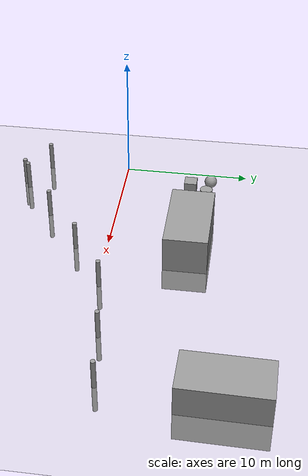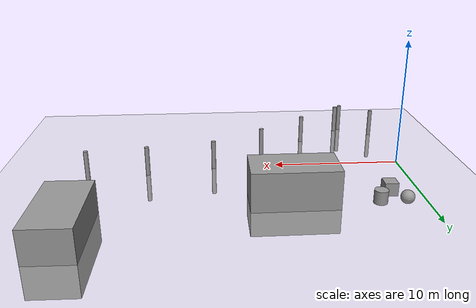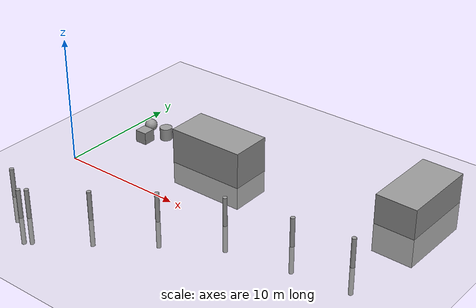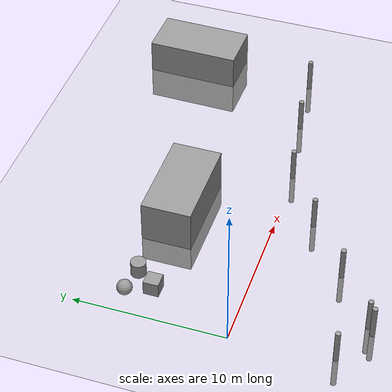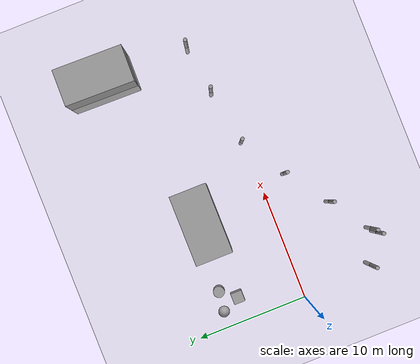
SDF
<sdf version="1.7">
 <world name="default">
  <model name="ground_plane">
   <static>1</static>
   <link name="link">
    <collision name="collision">
     <geometry><plane><normal>0 0 1</normal><size>100 100</size></plane></geometry>
     <surface>
      <contact><collide_bitmask>65535</collide_bitmask></contact>
      <friction><ode><mu>100</mu><mu2>50</mu2></ode></friction>
     </surface>
    </collision>
    <visual name="visual">
     <cast_shadows>0</cast_shadows>
     <geometry><plane><normal>0 0 1</normal><size>100 100</size></plane></geometry>
     <material>
      <script><uri>file://media/materials/scripts/gazebo.material</uri><name>Gazebo/Grey</name></script>
     </material>
    </visual>
   </link>
  </model>
  <model name="filar_12">
   <link name="link">
    <inertial>
     <mass>0.532177</mass>
     <inertia>
      <ixx>0.930096</ixx>
      <ixy>0</ixy>
      <ixz>0</ixz>
      <iyy>0.930096</iyy>
      <iyz>0</iyz>
      <izz>0.00774183</izz>
     </inertia>
    </inertial>
    <visual name="visual">
     <geometry><cylinder><radius>0.170572</radius><length>4.57005</length></cylinder></geometry>
     <material>
      <script><name>Gazebo/Grey</name><uri>file://media/materials/scripts/gazebo.material</uri></script>
      <shader type="pixel"/>
     </material>
    </visual>
    <collision name="collision">
     <geometry><cylinder><radius>0.170572</radius><length>4.57005</length></cylinder></geometry>
     <surface>
      <friction>
       <ode><mu>1</mu><mu2>1</mu2><fdir1>0 0 0</fdir1><slip1>0</slip1><slip2>0</slip2></ode>
       <torsional>
        <coefficient>1</coefficient>
        <patch_radius>0</patch_radius>
        <surface_radius>0</surface_radius>
        <use_patch_radius>1</use_patch_radius>
        <ode><slip>0</slip></ode>
       </torsional>
      </friction>
      <bounce><restitution_coefficient>0</restitution_coefficient><threshold>1e+06</threshold></bounce>
      <contact>
       <collide_without_contact>0</collide_without_contact>
       <collide_without_contact_bitmask>1</collide_without_contact_bitmask>
       <collide_bitmask>1</collide_bitmask>
       <ode>
        <soft_cfm>0</soft_cfm>
        <soft_erp>0.2</soft_erp>
        <kp>1e+13</kp>
        <kd>1</kd>
        <max_vel>0.01</max_vel>
        <min_depth>0</min_depth>
       </ode>
       <bullet>
        <split_impulse>1</split_impulse>
        <split_impulse_penetration_threshold>-0.01</split_impulse_penetration_threshold>
        <soft_cfm>0</soft_cfm>
        <soft_erp>0.2</soft_erp>
        <kp>1e+13</kp>
        <kd>1</kd>
       </bullet>
      </contact>
     </surface>
    </collision>
   </link>
   <static>0</static>
   <pose>3.50091 -7.76984 0 0 -0 0</pose>
  </model>
  <model name="filar_13">
   <link name="link">
    <inertial>
     <mass>0.532177</mass>
     <inertia>
      <ixx>0.930096</ixx>
      <ixy>0</ixy>
      <ixz>0</ixz>
      <iyy>0.930096</iyy>
      <iyz>0</iyz>
      <izz>0.00774183</izz>
     </inertia>
    </inertial>
    <visual name="visual">
     <geometry><cylinder><radius>0.170572</radius><length>4.57005</length></cylinder></geometry>
     <material>
      <script><name>Gazebo/Grey</name><uri>file://media/materials/scripts/gazebo.material</uri></script>
      <shader type="pixel"/>
     </material>
    </visual>
    <collision name="collision">
     <geometry><cylinder><radius>0.170572</radius><length>4.57005</length></cylinder></geometry>
     <surface>
      <friction>
       <ode><mu>1</mu><mu2>1</mu2><fdir1>0 0 0</fdir1><slip1>0</slip1><slip2>0</slip2></ode>
       <torsional>
        <coefficient>1</coefficient>
        <patch_radius>0</patch_radius>
        <surface_radius>0</surface_radius>
        <use_patch_radius>1</use_patch_radius>
        <ode><slip>0</slip></ode>
       </torsional>
      </friction>
      <bounce><restitution_coefficient>0</restitution_coefficient><threshold>1e+06</threshold></bounce>
      <contact>
       <collide_without_contact>0</collide_without_contact>
       <collide_without_contact_bitmask>1</collide_without_contact_bitmask>
       <collide_bitmask>1</collide_bitmask>
       <ode>
        <soft_cfm>0</soft_cfm>
        <soft_erp>0.2</soft_erp>
        <kp>1e+13</kp>
        <kd>1</kd>
        <max_vel>0.01</max_vel>
        <min_depth>0</min_depth>
       </ode>
       <bullet>
        <split_impulse>1</split_impulse>
        <split_impulse_penetration_threshold>-0.01</split_impulse_penetration_threshold>
        <soft_cfm>0</soft_cfm>
        <soft_erp>0.2</soft_erp>
        <kp>1e+13</kp>
        <kd>1</kd>
       </bullet>
      </contact>
     </surface>
    </collision>
   </link>
   <static>0</static>
   <pose>3.02459 -8.12352 0 0 -0 0</pose>
  </model>
  <model name="filar_14">
   <link name="link">
    <inertial>
     <mass>0.532177</mass>
     <inertia>
      <ixx>0.930096</ixx>
      <ixy>0</ixy>
      <ixz>0</ixz>
      <iyy>0.930096</iyy>
      <iyz>0</iyz>
      <izz>0.00774183</izz>
     </inertia>
    </inertial>
    <visual name="visual">
     <geometry><cylinder><radius>0.170572</radius><length>4.57005</length></cylinder></geometry>
     <material>
      <script><name>Gazebo/Grey</name><uri>file://media/materials/scripts/gazebo.material</uri></script>
      <shader type="pixel"/>
     </material>
    </visual>
    <collision name="collision">
     <geometry><cylinder><radius>0.170572</radius><length>4.57005</length></cylinder></geometry>
     <surface>
      <friction>
       <ode><mu>1</mu><mu2>1</mu2><fdir1>0 0 0</fdir1><slip1>0</slip1><slip2>0</slip2></ode>
       <torsional>
        <coefficient>1</coefficient>
        <patch_radius>0</patch_radius>
        <surface_radius>0</surface_radius>
        <use_patch_radius>1</use_patch_radius>
        <ode><slip>0</slip></ode>
       </torsional>
      </friction>
      <bounce><restitution_coefficient>0</restitution_coefficient><threshold>1e+06</threshold></bounce>
      <contact>
       <collide_without_contact>0</collide_without_contact>
       <collide_without_contact_bitmask>1</collide_without_contact_bitmask>
       <collide_bitmask>1</collide_bitmask>
       <ode>
        <soft_cfm>0</soft_cfm>
        <soft_erp>0.2</soft_erp>
        <kp>1e+13</kp>
        <kd>1</kd>
        <max_vel>0.01</max_vel>
        <min_depth>0</min_depth>
       </ode>
       <bullet>
        <split_impulse>1</split_impulse>
        <split_impulse_penetration_threshold>-0.01</split_impulse_penetration_threshold>
        <soft_cfm>0</soft_cfm>
        <soft_erp>0.2</soft_erp>
        <kp>1e+13</kp>
        <kd>1</kd>
       </bullet>
      </contact>
     </surface>
    </collision>
   </link>
   <static>0</static>
   <pose>0.499751 -6.51824 0 0 -0 0</pose>
  </model>
  <model name="filar_16">
   <link name="link">
    <inertial>
     <mass>0.532177</mass>
     <inertia>
      <ixx>0.930096</ixx>
      <ixy>0</ixy>
      <ixz>0</ixz>
      <iyy>0.930096</iyy>
      <iyz>0</iyz>
      <izz>0.00774183</izz>
     </inertia>
    </inertial>
    <visual name="visual">
     <geometry><cylinder><radius>0.170572</radius><length>4.57005</length></cylinder></geometry>
     <material>
      <script><name>Gazebo/Grey</name><uri>file://media/materials/scripts/gazebo.material</uri></script>
      <shader type="pixel"/>
     </material>
    </visual>
    <collision name="collision">
     <geometry><cylinder><radius>0.170572</radius><length>4.57005</length></cylinder></geometry>
     <surface>
      <friction>
       <ode><mu>1</mu><mu2>1</mu2><fdir1>0 0 0</fdir1><slip1>0</slip1><slip2>0</slip2></ode>
       <torsional>
        <coefficient>1</coefficient>
        <patch_radius>0</patch_radius>
        <surface_radius>0</surface_radius>
        <use_patch_radius>1</use_patch_radius>
        <ode><slip>0</slip></ode>
       </torsional>
      </friction>
      <bounce><restitution_coefficient>0</restitution_coefficient><threshold>1e+06</threshold></bounce>
      <contact>
       <collide_without_contact>0</collide_without_contact>
       <collide_without_contact_bitmask>1</collide_without_contact_bitmask>
       <collide_bitmask>1</collide_bitmask>
       <ode>
        <soft_cfm>0</soft_cfm>
        <soft_erp>0.2</soft_erp>
        <kp>1e+13</kp>
        <kd>1</kd>
        <max_vel>0.01</max_vel>
        <min_depth>0</min_depth>
       </ode>
       <bullet>
        <split_impulse>1</split_impulse>
        <split_impulse_penetration_threshold>-0.01</split_impulse_penetration_threshold>
        <soft_cfm>0</soft_cfm>
        <soft_erp>0.2</soft_erp>
        <kp>1e+13</kp>
        <kd>1</kd>
       </bullet>
      </contact>
     </surface>
    </collision>
   </link>
   <static>0</static>
   <pose>7.10217 -5.21174 0 0 -0 0</pose>
  </model>
  <model name="filar_17">
   <link name="link">
    <inertial>
     <mass>0.532177</mass>
     <inertia>
      <ixx>0.930096</ixx>
      <ixy>0</ixy>
      <ixz>0</ixz>
      <iyy>0.930096</iyy>
      <iyz>0</iyz>
      <izz>0.00774183</izz>
     </inertia>
    </inertial>
    <visual name="visual">
     <geometry><cylinder><radius>0.170572</radius><length>4.57005</length></cylinder></geometry>
     <material>
      <script><name>Gazebo/Grey</name><uri>file://media/materials/scripts/gazebo.material</uri></script>
      <shader type="pixel"/>
     </material>
    </visual>
    <collision name="collision">
     <geometry><cylinder><radius>0.170572</radius><length>4.57005</length></cylinder></geometry>
     <surface>
      <friction>
       <ode><mu>1</mu><mu2>1</mu2><fdir1>0 0 0</fdir1><slip1>0</slip1><slip2>0</slip2></ode>
       <torsional>
        <coefficient>1</coefficient>
        <patch_radius>0</patch_radius>
        <surface_radius>0</surface_radius>
        <use_patch_radius>1</use_patch_radius>
        <ode><slip>0</slip></ode>
       </torsional>
      </friction>
      <bounce><restitution_coefficient>0</restitution_coefficient><threshold>1e+06</threshold></bounce>
      <contact>
       <collide_without_contact>0</collide_without_contact>
       <collide_without_contact_bitmask>1</collide_without_contact_bitmask>
       <collide_bitmask>1</collide_bitmask>
       <ode>
        <soft_cfm>0</soft_cfm>
        <soft_erp>0.2</soft_erp>
        <kp>1e+13</kp>
        <kd>1</kd>
        <max_vel>0.01</max_vel>
        <min_depth>0</min_depth>
       </ode>
       <bullet>
        <split_impulse>1</split_impulse>
        <split_impulse_penetration_threshold>-0.01</split_impulse_penetration_threshold>
        <soft_cfm>0</soft_cfm>
        <soft_erp>0.2</soft_erp>
        <kp>1e+13</kp>
        <kd>1</kd>
       </bullet>
      </contact>
     </surface>
    </collision>
   </link>
   <static>0</static>
   <pose>10.9396 -2.38627 0 0 -0 0</pose>
  </model>
  <model name="filar_18">
   <link name="link">
    <inertial>
     <mass>0.532177</mass>
     <inertia>
      <ixx>0.930096</ixx>
      <ixy>0</ixy>
      <ixz>0</ixz>
      <iyy>0.930096</iyy>
      <iyz>0</iyz>
      <izz>0.00774183</izz>
     </inertia>
    </inertial>
    <visual name="visual">
     <geometry><cylinder><radius>0.170572</radius><length>4.57005</length></cylinder></geometry>
     <material>
      <script><name>Gazebo/Grey</name><uri>file://media/materials/scripts/gazebo.material</uri></script>
      <shader type="pixel"/>
     </material>
    </visual>
    <collision name="collision">
     <geometry><cylinder><radius>0.170572</radius><length>4.57005</length></cylinder></geometry>
     <surface>
      <friction>
       <ode><mu>1</mu><mu2>1</mu2><fdir1>0 0 0</fdir1><slip1>0</slip1><slip2>0</slip2></ode>
       <torsional>
        <coefficient>1</coefficient>
        <patch_radius>0</patch_radius>
        <surface_radius>0</surface_radius>
        <use_patch_radius>1</use_patch_radius>
        <ode><slip>0</slip></ode>
       </torsional>
      </friction>
      <bounce><restitution_coefficient>0</restitution_coefficient><threshold>1e+06</threshold></bounce>
      <contact>
       <collide_without_contact>0</collide_without_contact>
       <collide_without_contact_bitmask>1</collide_without_contact_bitmask>
       <collide_bitmask>1</collide_bitmask>
       <ode>
        <soft_cfm>0</soft_cfm>
        <soft_erp>0.2</soft_erp>
        <kp>1e+13</kp>
        <kd>1</kd>
        <max_vel>0.01</max_vel>
        <min_depth>0</min_depth>
       </ode>
       <bullet>
        <split_impulse>1</split_impulse>
        <split_impulse_penetration_threshold>-0.01</split_impulse_penetration_threshold>
        <soft_cfm>0</soft_cfm>
        <soft_erp>0.2</soft_erp>
        <kp>1e+13</kp>
        <kd>1</kd>
       </bullet>
      </contact>
     </surface>
    </collision>
   </link>
   <static>0</static>
   <pose>15.0053 0.146259 0 0 -0 0</pose>
  </model>
  <model name="filar_19">
   <link name="link">
    <inertial>
     <mass>0.532177</mass>
     <inertia>
      <ixx>0.930096</ixx>
      <ixy>0</ixy>
      <ixz>0</ixz>
      <iyy>0.930096</iyy>
      <iyz>0</iyz>
      <izz>0.00774183</izz>
     </inertia>
    </inertial>
    <visual name="visual">
     <geometry><cylinder><radius>0.170572</radius><length>4.57005</length></cylinder></geometry>
     <material>
      <script><name>Gazebo/Grey</name><uri>file://media/materials/scripts/gazebo.material</uri></script>
      <shader type="pixel"/>
     </material>
    </visual>
    <collision name="collision">
     <geometry><cylinder><radius>0.170572</radius><length>4.57005</length></cylinder></geometry>
     <surface>
      <friction>
       <ode><mu>1</mu><mu2>1</mu2><fdir1>0 0 0</fdir1><slip1>0</slip1><slip2>0</slip2></ode>
       <torsional>
        <coefficient>1</coefficient>
        <patch_radius>0</patch_radius>
        <surface_radius>0</surface_radius>
        <use_patch_radius>1</use_patch_radius>
        <ode><slip>0</slip></ode>
       </torsional>
      </friction>
      <bounce><restitution_coefficient>0</restitution_coefficient><threshold>1e+06</threshold></bounce>
      <contact>
       <collide_without_contact>0</collide_without_contact>
       <collide_without_contact_bitmask>1</collide_without_contact_bitmask>
       <collide_bitmask>1</collide_bitmask>
       <ode>
        <soft_cfm>0</soft_cfm>
        <soft_erp>0.2</soft_erp>
        <kp>1e+13</kp>
        <kd>1</kd>
        <max_vel>0.01</max_vel>
        <min_depth>0</min_depth>
       </ode>
       <bullet>
        <split_impulse>1</split_impulse>
        <split_impulse_penetration_threshold>-0.01</split_impulse_penetration_threshold>
        <soft_cfm>0</soft_cfm>
        <soft_erp>0.2</soft_erp>
        <kp>1e+13</kp>
        <kd>1</kd>
       </bullet>
      </contact>
     </surface>
    </collision>
   </link>
   <static>0</static>
   <pose>20.1635 1.03899 0 0 -0 0</pose>
  </model>
  <model name="filar_20">
   <link name="link">
    <inertial>
     <mass>0.532177</mass>
     <inertia>
      <ixx>0.930096</ixx>
      <ixy>0</ixy>
      <ixz>0</ixz>
      <iyy>0.930096</iyy>
      <iyz>0</iyz>
      <izz>0.00774183</izz>
     </inertia>
    </inertial>
    <visual name="visual">
     <geometry><cylinder><radius>0.170572</radius><length>4.57005</length></cylinder></geometry>
     <material>
      <script><name>Gazebo/Grey</name><uri>file://media/materials/scripts/gazebo.material</uri></script>
      <shader type="pixel"/>
     </material>
    </visual>
    <collision name="collision">
     <geometry><cylinder><radius>0.170572</radius><length>4.57005</length></cylinder></geometry>
     <surface>
      <friction>
       <ode><mu>1</mu><mu2>1</mu2><fdir1>0 0 0</fdir1><slip1>0</slip1><slip2>0</slip2></ode>
       <torsional>
        <coefficient>1</coefficient>
        <patch_radius>0</patch_radius>
        <surface_radius>0</surface_radius>
        <use_patch_radius>1</use_patch_radius>
        <ode><slip>0</slip></ode>
       </torsional>
      </friction>
      <bounce><restitution_coefficient>0</restitution_coefficient><threshold>1e+06</threshold></bounce>
      <contact>
       <collide_without_contact>0</collide_without_contact>
       <collide_without_contact_bitmask>1</collide_without_contact_bitmask>
       <collide_bitmask>1</collide_bitmask>
       <ode>
        <soft_cfm>0</soft_cfm>
        <soft_erp>0.2</soft_erp>
        <kp>1e+13</kp>
        <kd>1</kd>
        <max_vel>0.01</max_vel>
        <min_depth>0</min_depth>
       </ode>
       <bullet>
        <split_impulse>1</split_impulse>
        <split_impulse_penetration_threshold>-0.01</split_impulse_penetration_threshold>
        <soft_cfm>0</soft_cfm>
        <soft_erp>0.2</soft_erp>
        <kp>1e+13</kp>
        <kd>1</kd>
       </bullet>
      </contact>
     </surface>
    </collision>
   </link>
   <static>0</static>
   <pose>24.6973 1.59989 0 0 -0 0</pose>
  </model>
  <model name="unit_box">
   <link name="link">
    <inertial>
     <mass>99.7111</mass>
     <inertia><ixx>280.232</ixx><ixy>0</ixy><ixz>0</ixz><iyy>519.135</iyy><iyz>0</iyz><izz>421.831</izz></inertia>
    </inertial>
    <visual name="visual">
     <geometry><box><size>6.30547 3.31775 4.76632</size></box></geometry>
     <material>
      <script><name>Gazebo/Grey</name><uri>file://media/materials/scripts/gazebo.material</uri></script>
      <shader type="pixel"/>
     </material>
    </visual>
    <collision name="collision">
     <geometry><box><size>6.30547 3.31775 4.76632</size></box></geometry>
     <surface>
      <friction>
       <ode><mu>1</mu><mu2>1</mu2><fdir1>0 0 0</fdir1><slip1>0</slip1><slip2>0</slip2></ode>
       <torsional>
        <coefficient>1</coefficient>
        <patch_radius>0</patch_radius>
        <surface_radius>0</surface_radius>
        <use_patch_radius>1</use_patch_radius>
        <ode><slip>0</slip></ode>
       </torsional>
      </friction>
      <bounce><restitution_coefficient>0</restitution_coefficient><threshold>1e+06</threshold></bounce>
      <contact>
       <collide_without_contact>0</collide_without_contact>
       <collide_without_contact_bitmask>1</collide_without_contact_bitmask>
       <collide_bitmask>1</collide_bitmask>
       <ode>
        <soft_cfm>0</soft_cfm>
        <soft_erp>0.2</soft_erp>
        <kp>1e+13</kp>
        <kd>1</kd>
        <max_vel>0.01</max_vel>
        <min_depth>0</min_depth>
       </ode>
       <bullet>
        <split_impulse>1</split_impulse>
        <split_impulse_penetration_threshold>-0.01</split_impulse_penetration_threshold>
        <soft_cfm>0</soft_cfm>
        <soft_erp>0.2</soft_erp>
        <kp>1e+13</kp>
        <kd>1</kd>
       </bullet>
      </contact>
     </surface>
    </collision>
   </link>
   <static>0</static>
   <pose>9.50643 6.13771 0.5 0 -0 0</pose>
  </model>
  <model name="unit_box_1">
   <link name="link">
    <inertial>
     <mass>99.7111</mass>
     <inertia><ixx>280.232</ixx><ixy>0</ixy><ixz>0</ixz><iyy>519.135</iyy><iyz>0</iyz><izz>421.831</izz></inertia>
    </inertial>
    <visual name="visual">
     <geometry><box><size>6.30547 3.31775 4.76632</size></box></geometry>
     <material>
      <script><name>Gazebo/Grey</name><uri>file://media/materials/scripts/gazebo.material</uri></script>
      <shader type="pixel"/>
     </material>
    </visual>
    <collision name="collision">
     <geometry><box><size>6.30547 3.31775 4.76632</size></box></geometry>
     <surface>
      <friction>
       <ode><mu>1</mu><mu2>1</mu2><fdir1>0 0 0</fdir1><slip1>0</slip1><slip2>0</slip2></ode>
       <torsional>
        <coefficient>1</coefficient>
        <patch_radius>0</patch_radius>
        <surface_radius>0</surface_radius>
        <use_patch_radius>1</use_patch_radius>
        <ode><slip>0</slip></ode>
       </torsional>
      </friction>
      <bounce><restitution_coefficient>0</restitution_coefficient><threshold>1e+06</threshold></bounce>
      <contact>
       <collide_without_contact>0</collide_without_contact>
       <collide_without_contact_bitmask>1</collide_without_contact_bitmask>
       <collide_bitmask>1</collide_bitmask>
       <ode>
        <soft_cfm>0</soft_cfm>
        <soft_erp>0.2</soft_erp>
        <kp>1e+13</kp>
        <kd>1</kd>
        <max_vel>0.01</max_vel>
        <min_depth>0</min_depth>
       </ode>
       <bullet>
        <split_impulse>1</split_impulse>
        <split_impulse_penetration_threshold>-0.01</split_impulse_penetration_threshold>
        <soft_cfm>0</soft_cfm>
        <soft_erp>0.2</soft_erp>
        <kp>1e+13</kp>
        <kd>1</kd>
       </bullet>
      </contact>
     </surface>
    </collision>
   </link>
   <static>0</static>
   <pose>24.7294 10.0172 0 0 0 -1.58899</pose>
  </model>
  <model name="unit_sphere">
   <pose>1.5509 7.14579 0.5 0 -0 0</pose>
   <link name="link">
    <inertial>
     <mass>1</mass>
     <inertia><ixx>0.1</ixx><ixy>0</ixy><ixz>0</ixz><iyy>0.1</iyy><iyz>0</iyz><izz>0.1</izz></inertia>
    </inertial>
    <collision name="collision"><geometry><sphere><radius>0.5</radius></sphere></geometry></collision>
    <visual name="visual">
     <geometry><sphere><radius>0.5</radius></sphere></geometry>
     <material>
      <script><name>Gazebo/Grey</name><uri>file://media/materials/scripts/gazebo.material</uri></script>
     </material>
    </visual>
   </link>
  </model>
  <model name="unit_cylinder">
   <pose>3.38801 6.91565 0.5 0 -0 0</pose>
   <link name="link">
    <inertial>
     <mass>1</mass>
     <inertia><ixx>0.145833</ixx><ixy>0</ixy><ixz>0</ixz><iyy>0.145833</iyy><iyz>0</iyz><izz>0.125</izz></inertia>
    </inertial>
    <collision name="collision">
     <geometry><cylinder><radius>0.5</radius><length>1</length></cylinder></geometry>
    </collision>
    <visual name="visual">
     <geometry><cylinder><radius>0.5</radius><length>1</length></cylinder></geometry>
     <material>
      <script><name>Gazebo/Grey</name><uri>file://media/materials/scripts/gazebo.material</uri></script>
     </material>
    </visual>
   </link>
  </model>
  <model name="unit_box_2">
   <pose>2.33619 5.55108 0.5 0 -0 0</pose>
   <link name="link">
    <inertial>
     <mass>1</mass>
     <inertia>
      <ixx>0.166667</ixx>
      <ixy>0</ixy>
      <ixz>0</ixz>
      <iyy>0.166667</iyy>
      <iyz>0</iyz>
      <izz>0.166667</izz>
     </inertia>
    </inertial>
    <collision name="collision"><geometry><box><size>1 1 1</size></box></geometry></collision>
    <visual name="visual">
     <geometry><box><size>1 1 1</size></box></geometry>
     <material>
      <script><name>Gazebo/Grey</name><uri>file://media/materials/scripts/gazebo.material</uri></script>
     </material>
    </visual>
   </link>
  </model>
 </world>
</sdf>
